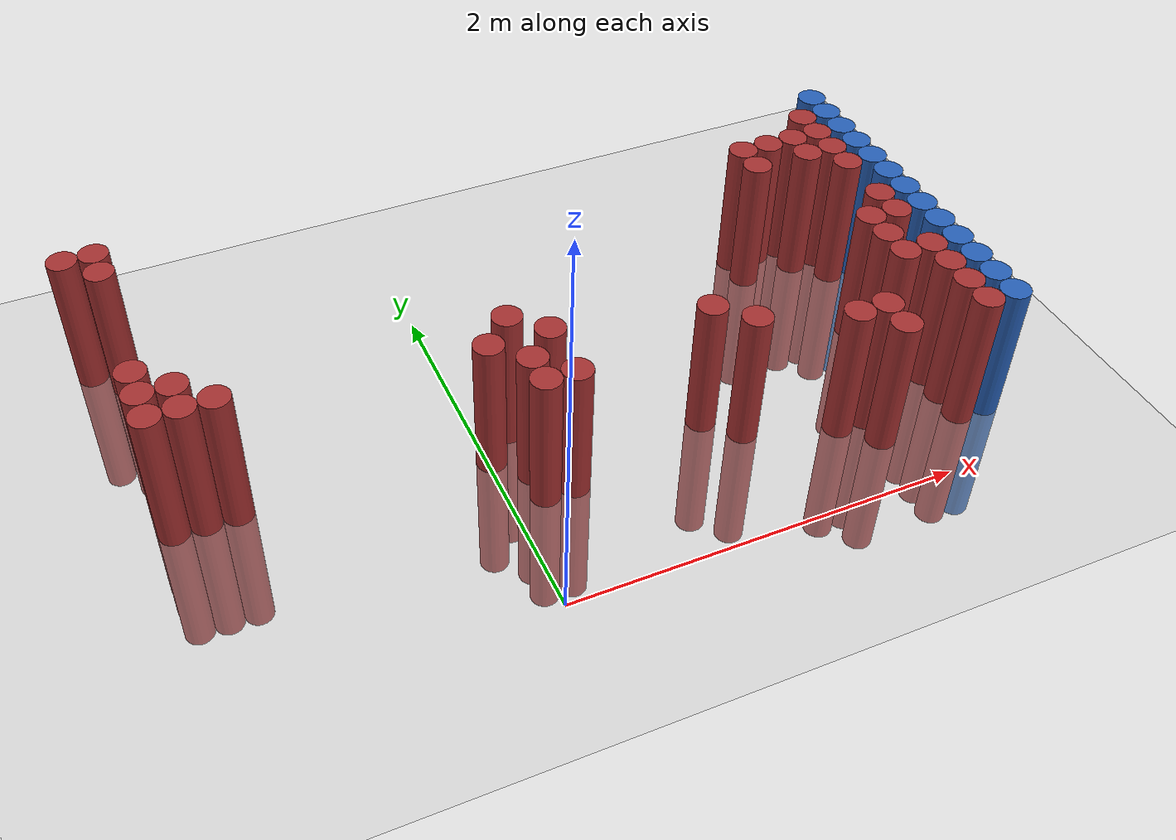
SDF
<sdf version="1.6">
 <world name="default">
  <model name="ground_plane">
   <static>1</static>
   <link name="link">
    <collision name="collision">
     <geometry><plane><normal>0 0 1</normal><size>100 100</size></plane></geometry>
     <surface><friction><ode><mu>100</mu><mu2>50</mu2></ode></friction></surface>
    </collision>
    <visual name="visual">
     <cast_shadows>0</cast_shadows>
     <geometry><plane><normal>0 0 1</normal><size>100 100</size></plane></geometry>
     <material>
      <script><uri>file://media/materials/scripts/gazebo.material</uri><name>Gazebo/Grey</name></script>
     </material>
    </visual>
   </link>
  </model>
  <model name="unit_cylinder_148">
   <static>1</static>
   <pose>-1.625000 2.275000 0.000000 0.000000 0.000000 0.000000</pose>
   <link name="link">
    <inertial>
     <mass>1</mass>
     <inertia><ixx>0.145833</ixx><ixy>0</ixy><ixz>0</ixz><iyy>0.145833</iyy><iyz>0</iyz><izz>0.125</izz></inertia>
    </inertial>
    <collision name="collision">
     <geometry><cylinder><radius>0.075000</radius><length>1.5</length></cylinder></geometry>
    </collision>
    <visual name="visual">
     <geometry><cylinder><radius>0.075000</radius><length>1.5</length></cylinder></geometry>
     <material>
      <ambient>0.648000 0.192000 0.192000 1</ambient>
      <diffuse>0.648000 0.192000 0.192000 1</diffuse>
     </material>
     <material>
      <script><name>Gazebo/Grey</name><uri>file://media/materials/scripts/gazebo.material</uri></script>
     </material>
    </visual>
   </link>
  </model>
  <model name="unit_cylinder_154">
   <static>1</static>
   <pose>-1.475000 1.075000 0.000000 0.000000 0.000000 0.000000</pose>
   <link name="link">
    <inertial>
     <mass>1</mass>
     <inertia><ixx>0.145833</ixx><ixy>0</ixy><ixz>0</ixz><iyy>0.145833</iyy><iyz>0</iyz><izz>0.125</izz></inertia>
    </inertial>
    <collision name="collision">
     <geometry><cylinder><radius>0.075000</radius><length>1.5</length></cylinder></geometry>
    </collision>
    <visual name="visual">
     <geometry><cylinder><radius>0.075000</radius><length>1.5</length></cylinder></geometry>
     <material>
      <ambient>0.648000 0.192000 0.192000 1</ambient>
      <diffuse>0.648000 0.192000 0.192000 1</diffuse>
     </material>
     <material>
      <script><name>Gazebo/Grey</name><uri>file://media/materials/scripts/gazebo.material</uri></script>
     </material>
    </visual>
   </link>
  </model>
  <model name="unit_cylinder_155">
   <static>1</static>
   <pose>-1.475000 1.225000 0.000000 0.000000 0.000000 0.000000</pose>
   <link name="link">
    <inertial>
     <mass>1</mass>
     <inertia><ixx>0.145833</ixx><ixy>0</ixy><ixz>0</ixz><iyy>0.145833</iyy><iyz>0</iyz><izz>0.125</izz></inertia>
    </inertial>
    <collision name="collision">
     <geometry><cylinder><radius>0.075000</radius><length>1.5</length></cylinder></geometry>
    </collision>
    <visual name="visual">
     <geometry><cylinder><radius>0.075000</radius><length>1.5</length></cylinder></geometry>
     <material>
      <ambient>0.648000 0.192000 0.192000 1</ambient>
      <diffuse>0.648000 0.192000 0.192000 1</diffuse>
     </material>
     <material>
      <script><name>Gazebo/Grey</name><uri>file://media/materials/scripts/gazebo.material</uri></script>
     </material>
    </visual>
   </link>
  </model>
  <model name="unit_cylinder_156">
   <static>1</static>
   <pose>-1.475000 1.375000 0.000000 0.000000 0.000000 0.000000</pose>
   <link name="link">
    <inertial>
     <mass>1</mass>
     <inertia><ixx>0.145833</ixx><ixy>0</ixy><ixz>0</ixz><iyy>0.145833</iyy><iyz>0</iyz><izz>0.125</izz></inertia>
    </inertial>
    <collision name="collision">
     <geometry><cylinder><radius>0.075000</radius><length>1.5</length></cylinder></geometry>
    </collision>
    <visual name="visual">
     <geometry><cylinder><radius>0.075000</radius><length>1.5</length></cylinder></geometry>
     <material>
      <ambient>0.648000 0.192000 0.192000 1</ambient>
      <diffuse>0.648000 0.192000 0.192000 1</diffuse>
     </material>
     <material>
      <script><name>Gazebo/Grey</name><uri>file://media/materials/scripts/gazebo.material</uri></script>
     </material>
    </visual>
   </link>
  </model>
  <model name="unit_cylinder_157">
   <static>1</static>
   <pose>-1.475000 2.125000 0.000000 0.000000 0.000000 0.000000</pose>
   <link name="link">
    <inertial>
     <mass>1</mass>
     <inertia><ixx>0.145833</ixx><ixy>0</ixy><ixz>0</ixz><iyy>0.145833</iyy><iyz>0</iyz><izz>0.125</izz></inertia>
    </inertial>
    <collision name="collision">
     <geometry><cylinder><radius>0.075000</radius><length>1.5</length></cylinder></geometry>
    </collision>
    <visual name="visual">
     <geometry><cylinder><radius>0.075000</radius><length>1.5</length></cylinder></geometry>
     <material>
      <ambient>0.648000 0.192000 0.192000 1</ambient>
      <diffuse>0.648000 0.192000 0.192000 1</diffuse>
     </material>
     <material>
      <script><name>Gazebo/Grey</name><uri>file://media/materials/scripts/gazebo.material</uri></script>
     </material>
    </visual>
   </link>
  </model>
  <model name="unit_cylinder_158">
   <static>1</static>
   <pose>-1.475000 2.275000 0.000000 0.000000 0.000000 0.000000</pose>
   <link name="link">
    <inertial>
     <mass>1</mass>
     <inertia><ixx>0.145833</ixx><ixy>0</ixy><ixz>0</ixz><iyy>0.145833</iyy><iyz>0</iyz><izz>0.125</izz></inertia>
    </inertial>
    <collision name="collision">
     <geometry><cylinder><radius>0.075000</radius><length>1.5</length></cylinder></geometry>
    </collision>
    <visual name="visual">
     <geometry><cylinder><radius>0.075000</radius><length>1.5</length></cylinder></geometry>
     <material>
      <ambient>0.648000 0.192000 0.192000 1</ambient>
      <diffuse>0.648000 0.192000 0.192000 1</diffuse>
     </material>
     <material>
      <script><name>Gazebo/Grey</name><uri>file://media/materials/scripts/gazebo.material</uri></script>
     </material>
    </visual>
   </link>
  </model>
  <model name="unit_cylinder_161">
   <static>1</static>
   <pose>-1.325000 1.075000 0.000000 0.000000 0.000000 0.000000</pose>
   <link name="link">
    <inertial>
     <mass>1</mass>
     <inertia><ixx>0.145833</ixx><ixy>0</ixy><ixz>0</ixz><iyy>0.145833</iyy><iyz>0</iyz><izz>0.125</izz></inertia>
    </inertial>
    <collision name="collision">
     <geometry><cylinder><radius>0.075000</radius><length>1.5</length></cylinder></geometry>
    </collision>
    <visual name="visual">
     <geometry><cylinder><radius>0.075000</radius><length>1.5</length></cylinder></geometry>
     <material>
      <ambient>0.648000 0.192000 0.192000 1</ambient>
      <diffuse>0.648000 0.192000 0.192000 1</diffuse>
     </material>
     <material>
      <script><name>Gazebo/Grey</name><uri>file://media/materials/scripts/gazebo.material</uri></script>
     </material>
    </visual>
   </link>
  </model>
  <model name="unit_cylinder_162">
   <static>1</static>
   <pose>-1.325000 1.225000 0.000000 0.000000 0.000000 0.000000</pose>
   <link name="link">
    <inertial>
     <mass>1</mass>
     <inertia><ixx>0.145833</ixx><ixy>0</ixy><ixz>0</ixz><iyy>0.145833</iyy><iyz>0</iyz><izz>0.125</izz></inertia>
    </inertial>
    <collision name="collision">
     <geometry><cylinder><radius>0.075000</radius><length>1.5</length></cylinder></geometry>
    </collision>
    <visual name="visual">
     <geometry><cylinder><radius>0.075000</radius><length>1.5</length></cylinder></geometry>
     <material>
      <ambient>0.648000 0.192000 0.192000 1</ambient>
      <diffuse>0.648000 0.192000 0.192000 1</diffuse>
     </material>
     <material>
      <script><name>Gazebo/Grey</name><uri>file://media/materials/scripts/gazebo.material</uri></script>
     </material>
    </visual>
   </link>
  </model>
  <model name="unit_cylinder_164">
   <static>1</static>
   <pose>-1.175000 1.075000 0.000000 0.000000 0.000000 0.000000</pose>
   <link name="link">
    <inertial>
     <mass>1</mass>
     <inertia><ixx>0.145833</ixx><ixy>0</ixy><ixz>0</ixz><iyy>0.145833</iyy><iyz>0</iyz><izz>0.125</izz></inertia>
    </inertial>
    <collision name="collision">
     <geometry><cylinder><radius>0.075000</radius><length>1.5</length></cylinder></geometry>
    </collision>
    <visual name="visual">
     <geometry><cylinder><radius>0.075000</radius><length>1.5</length></cylinder></geometry>
     <material>
      <ambient>0.648000 0.192000 0.192000 1</ambient>
      <diffuse>0.648000 0.192000 0.192000 1</diffuse>
     </material>
     <material>
      <script><name>Gazebo/Grey</name><uri>file://media/materials/scripts/gazebo.material</uri></script>
     </material>
    </visual>
   </link>
  </model>
  <model name="unit_cylinder_169">
   <static>1</static>
   <pose>0.025000 0.925000 0.000000 0.000000 0.000000 0.000000</pose>
   <link name="link">
    <inertial>
     <mass>1</mass>
     <inertia><ixx>0.145833</ixx><ixy>0</ixy><ixz>0</ixz><iyy>0.145833</iyy><iyz>0</iyz><izz>0.125</izz></inertia>
    </inertial>
    <collision name="collision">
     <geometry><cylinder><radius>0.075000</radius><length>1.5</length></cylinder></geometry>
    </collision>
    <visual name="visual">
     <geometry><cylinder><radius>0.075000</radius><length>1.5</length></cylinder></geometry>
     <material>
      <ambient>0.648000 0.192000 0.192000 1</ambient>
      <diffuse>0.648000 0.192000 0.192000 1</diffuse>
     </material>
     <material>
      <script><name>Gazebo/Grey</name><uri>file://media/materials/scripts/gazebo.material</uri></script>
     </material>
    </visual>
   </link>
  </model>
  <model name="unit_cylinder_172">
   <static>1</static>
   <pose>0.175000 0.625000 0.000000 0.000000 0.000000 0.000000</pose>
   <link name="link">
    <inertial>
     <mass>1</mass>
     <inertia><ixx>0.145833</ixx><ixy>0</ixy><ixz>0</ixz><iyy>0.145833</iyy><iyz>0</iyz><izz>0.125</izz></inertia>
    </inertial>
    <collision name="collision">
     <geometry><cylinder><radius>0.075000</radius><length>1.5</length></cylinder></geometry>
    </collision>
    <visual name="visual">
     <geometry><cylinder><radius>0.075000</radius><length>1.5</length></cylinder></geometry>
     <material>
      <ambient>0.648000 0.192000 0.192000 1</ambient>
      <diffuse>0.648000 0.192000 0.192000 1</diffuse>
     </material>
     <material>
      <script><name>Gazebo/Grey</name><uri>file://media/materials/scripts/gazebo.material</uri></script>
     </material>
    </visual>
   </link>
  </model>
  <model name="unit_cylinder_173">
   <static>1</static>
   <pose>0.175000 0.775000 0.000000 0.000000 0.000000 0.000000</pose>
   <link name="link">
    <inertial>
     <mass>1</mass>
     <inertia><ixx>0.145833</ixx><ixy>0</ixy><ixz>0</ixz><iyy>0.145833</iyy><iyz>0</iyz><izz>0.125</izz></inertia>
    </inertial>
    <collision name="collision">
     <geometry><cylinder><radius>0.075000</radius><length>1.5</length></cylinder></geometry>
    </collision>
    <visual name="visual">
     <geometry><cylinder><radius>0.075000</radius><length>1.5</length></cylinder></geometry>
     <material>
      <ambient>0.648000 0.192000 0.192000 1</ambient>
      <diffuse>0.648000 0.192000 0.192000 1</diffuse>
     </material>
     <material>
      <script><name>Gazebo/Grey</name><uri>file://media/materials/scripts/gazebo.material</uri></script>
     </material>
    </visual>
   </link>
  </model>
  <model name="unit_cylinder_174">
   <static>1</static>
   <pose>0.175000 1.075000 0.000000 0.000000 0.000000 0.000000</pose>
   <link name="link">
    <inertial>
     <mass>1</mass>
     <inertia><ixx>0.145833</ixx><ixy>0</ixy><ixz>0</ixz><iyy>0.145833</iyy><iyz>0</iyz><izz>0.125</izz></inertia>
    </inertial>
    <collision name="collision">
     <geometry><cylinder><radius>0.075000</radius><length>1.5</length></cylinder></geometry>
    </collision>
    <visual name="visual">
     <geometry><cylinder><radius>0.075000</radius><length>1.5</length></cylinder></geometry>
     <material>
      <ambient>0.648000 0.192000 0.192000 1</ambient>
      <diffuse>0.648000 0.192000 0.192000 1</diffuse>
     </material>
     <material>
      <script><name>Gazebo/Grey</name><uri>file://media/materials/scripts/gazebo.material</uri></script>
     </material>
    </visual>
   </link>
  </model>
  <model name="unit_cylinder_176">
   <static>1</static>
   <pose>0.325000 0.625000 0.000000 0.000000 0.000000 0.000000</pose>
   <link name="link">
    <inertial>
     <mass>1</mass>
     <inertia><ixx>0.145833</ixx><ixy>0</ixy><ixz>0</ixz><iyy>0.145833</iyy><iyz>0</iyz><izz>0.125</izz></inertia>
    </inertial>
    <collision name="collision">
     <geometry><cylinder><radius>0.075000</radius><length>1.5</length></cylinder></geometry>
    </collision>
    <visual name="visual">
     <geometry><cylinder><radius>0.075000</radius><length>1.5</length></cylinder></geometry>
     <material>
      <ambient>0.648000 0.192000 0.192000 1</ambient>
      <diffuse>0.648000 0.192000 0.192000 1</diffuse>
     </material>
     <material>
      <script><name>Gazebo/Grey</name><uri>file://media/materials/scripts/gazebo.material</uri></script>
     </material>
    </visual>
   </link>
  </model>
  <model name="unit_cylinder_177">
   <static>1</static>
   <pose>0.325000 0.925000 0.000000 0.000000 0.000000 0.000000</pose>
   <link name="link">
    <inertial>
     <mass>1</mass>
     <inertia><ixx>0.145833</ixx><ixy>0</ixy><ixz>0</ixz><iyy>0.145833</iyy><iyz>0</iyz><izz>0.125</izz></inertia>
    </inertial>
    <collision name="collision">
     <geometry><cylinder><radius>0.075000</radius><length>1.5</length></cylinder></geometry>
    </collision>
    <visual name="visual">
     <geometry><cylinder><radius>0.075000</radius><length>1.5</length></cylinder></geometry>
     <material>
      <ambient>0.648000 0.192000 0.192000 1</ambient>
      <diffuse>0.648000 0.192000 0.192000 1</diffuse>
     </material>
     <material>
      <script><name>Gazebo/Grey</name><uri>file://media/materials/scripts/gazebo.material</uri></script>
     </material>
    </visual>
   </link>
  </model>
  <model name="unit_cylinder_178">
   <static>1</static>
   <pose>1.075000 0.775000 0.000000 0.000000 0.000000 0.000000</pose>
   <link name="link">
    <inertial>
     <mass>1</mass>
     <inertia><ixx>0.145833</ixx><ixy>0</ixy><ixz>0</ixz><iyy>0.145833</iyy><iyz>0</iyz><izz>0.125</izz></inertia>
    </inertial>
    <collision name="collision">
     <geometry><cylinder><radius>0.075000</radius><length>1.5</length></cylinder></geometry>
    </collision>
    <visual name="visual">
     <geometry><cylinder><radius>0.075000</radius><length>1.5</length></cylinder></geometry>
     <material>
      <ambient>0.648000 0.192000 0.192000 1</ambient>
      <diffuse>0.648000 0.192000 0.192000 1</diffuse>
     </material>
     <material>
      <script><name>Gazebo/Grey</name><uri>file://media/materials/scripts/gazebo.material</uri></script>
     </material>
    </visual>
   </link>
  </model>
  <model name="unit_cylinder_181">
   <static>1</static>
   <pose>1.225000 0.625000 0.000000 0.000000 0.000000 0.000000</pose>
   <link name="link">
    <inertial>
     <mass>1</mass>
     <inertia><ixx>0.145833</ixx><ixy>0</ixy><ixz>0</ixz><iyy>0.145833</iyy><iyz>0</iyz><izz>0.125</izz></inertia>
    </inertial>
    <collision name="collision">
     <geometry><cylinder><radius>0.075000</radius><length>1.5</length></cylinder></geometry>
    </collision>
    <visual name="visual">
     <geometry><cylinder><radius>0.075000</radius><length>1.5</length></cylinder></geometry>
     <material>
      <ambient>0.648000 0.192000 0.192000 1</ambient>
      <diffuse>0.648000 0.192000 0.192000 1</diffuse>
     </material>
     <material>
      <script><name>Gazebo/Grey</name><uri>file://media/materials/scripts/gazebo.material</uri></script>
     </material>
    </visual>
   </link>
  </model>
  <model name="unit_cylinder_185">
   <static>1</static>
   <pose>1.675000 0.475000 0.000000 0.000000 0.000000 0.000000</pose>
   <link name="link">
    <inertial>
     <mass>1</mass>
     <inertia><ixx>0.145833</ixx><ixy>0</ixy><ixz>0</ixz><iyy>0.145833</iyy><iyz>0</iyz><izz>0.125</izz></inertia>
    </inertial>
    <collision name="collision">
     <geometry><cylinder><radius>0.075000</radius><length>1.5</length></cylinder></geometry>
    </collision>
    <visual name="visual">
     <geometry><cylinder><radius>0.075000</radius><length>1.5</length></cylinder></geometry>
     <material>
      <ambient>0.648000 0.192000 0.192000 1</ambient>
      <diffuse>0.648000 0.192000 0.192000 1</diffuse>
     </material>
     <material>
      <script><name>Gazebo/Grey</name><uri>file://media/materials/scripts/gazebo.material</uri></script>
     </material>
    </visual>
   </link>
  </model>
  <model name="unit_cylinder_190">
   <static>1</static>
   <pose>1.825000 0.325000 0.000000 0.000000 0.000000 0.000000</pose>
   <link name="link">
    <inertial>
     <mass>1</mass>
     <inertia><ixx>0.145833</ixx><ixy>0</ixy><ixz>0</ixz><iyy>0.145833</iyy><iyz>0</iyz><izz>0.125</izz></inertia>
    </inertial>
    <collision name="collision">
     <geometry><cylinder><radius>0.075000</radius><length>1.5</length></cylinder></geometry>
    </collision>
    <visual name="visual">
     <geometry><cylinder><radius>0.075000</radius><length>1.5</length></cylinder></geometry>
     <material>
      <ambient>0.648000 0.192000 0.192000 1</ambient>
      <diffuse>0.648000 0.192000 0.192000 1</diffuse>
     </material>
     <material>
      <script><name>Gazebo/Grey</name><uri>file://media/materials/scripts/gazebo.material</uri></script>
     </material>
    </visual>
   </link>
  </model>
  <model name="unit_cylinder_191">
   <static>1</static>
   <pose>1.825000 0.475000 0.000000 0.000000 0.000000 0.000000</pose>
   <link name="link">
    <inertial>
     <mass>1</mass>
     <inertia><ixx>0.145833</ixx><ixy>0</ixy><ixz>0</ixz><iyy>0.145833</iyy><iyz>0</iyz><izz>0.125</izz></inertia>
    </inertial>
    <collision name="collision">
     <geometry><cylinder><radius>0.075000</radius><length>1.5</length></cylinder></geometry>
    </collision>
    <visual name="visual">
     <geometry><cylinder><radius>0.075000</radius><length>1.5</length></cylinder></geometry>
     <material>
      <ambient>0.648000 0.192000 0.192000 1</ambient>
      <diffuse>0.648000 0.192000 0.192000 1</diffuse>
     </material>
     <material>
      <script><name>Gazebo/Grey</name><uri>file://media/materials/scripts/gazebo.material</uri></script>
     </material>
    </visual>
   </link>
  </model>
  <model name="unit_cylinder_192">
   <static>1</static>
   <pose>1.825000 1.675000 0.000000 0.000000 0.000000 0.000000</pose>
   <link name="link">
    <inertial>
     <mass>1</mass>
     <inertia><ixx>0.145833</ixx><ixy>0</ixy><ixz>0</ixz><iyy>0.145833</iyy><iyz>0</iyz><izz>0.125</izz></inertia>
    </inertial>
    <collision name="collision">
     <geometry><cylinder><radius>0.075000</radius><length>1.5</length></cylinder></geometry>
    </collision>
    <visual name="visual">
     <geometry><cylinder><radius>0.075000</radius><length>1.5</length></cylinder></geometry>
     <material>
      <ambient>0.648000 0.192000 0.192000 1</ambient>
      <diffuse>0.648000 0.192000 0.192000 1</diffuse>
     </material>
     <material>
      <script><name>Gazebo/Grey</name><uri>file://media/materials/scripts/gazebo.material</uri></script>
     </material>
    </visual>
   </link>
  </model>
  <model name="unit_cylinder_193">
   <static>1</static>
   <pose>1.825000 1.825000 0.000000 0.000000 0.000000 0.000000</pose>
   <link name="link">
    <inertial>
     <mass>1</mass>
     <inertia><ixx>0.145833</ixx><ixy>0</ixy><ixz>0</ixz><iyy>0.145833</iyy><iyz>0</iyz><izz>0.125</izz></inertia>
    </inertial>
    <collision name="collision">
     <geometry><cylinder><radius>0.075000</radius><length>1.5</length></cylinder></geometry>
    </collision>
    <visual name="visual">
     <geometry><cylinder><radius>0.075000</radius><length>1.5</length></cylinder></geometry>
     <material>
      <ambient>0.648000 0.192000 0.192000 1</ambient>
      <diffuse>0.648000 0.192000 0.192000 1</diffuse>
     </material>
     <material>
      <script><name>Gazebo/Grey</name><uri>file://media/materials/scripts/gazebo.material</uri></script>
     </material>
    </visual>
   </link>
  </model>
  <model name="unit_cylinder_197">
   <static>1</static>
   <pose>1.975000 1.825000 0.000000 0.000000 0.000000 0.000000</pose>
   <link name="link">
    <inertial>
     <mass>1</mass>
     <inertia><ixx>0.145833</ixx><ixy>0</ixy><ixz>0</ixz><iyy>0.145833</iyy><iyz>0</iyz><izz>0.125</izz></inertia>
    </inertial>
    <collision name="collision">
     <geometry><cylinder><radius>0.075000</radius><length>1.5</length></cylinder></geometry>
    </collision>
    <visual name="visual">
     <geometry><cylinder><radius>0.075000</radius><length>1.5</length></cylinder></geometry>
     <material>
      <ambient>0.648000 0.192000 0.192000 1</ambient>
      <diffuse>0.648000 0.192000 0.192000 1</diffuse>
     </material>
     <material>
      <script><name>Gazebo/Grey</name><uri>file://media/materials/scripts/gazebo.material</uri></script>
     </material>
    </visual>
   </link>
  </model>
  <model name="unit_cylinder_200">
   <static>1</static>
   <pose>2.125000 0.775000 0.000000 0.000000 0.000000 0.000000</pose>
   <link name="link">
    <inertial>
     <mass>1</mass>
     <inertia><ixx>0.145833</ixx><ixy>0</ixy><ixz>0</ixz><iyy>0.145833</iyy><iyz>0</iyz><izz>0.125</izz></inertia>
    </inertial>
    <collision name="collision">
     <geometry><cylinder><radius>0.075000</radius><length>1.5</length></cylinder></geometry>
    </collision>
    <visual name="visual">
     <geometry><cylinder><radius>0.075000</radius><length>1.5</length></cylinder></geometry>
     <material>
      <ambient>0.648000 0.192000 0.192000 1</ambient>
      <diffuse>0.648000 0.192000 0.192000 1</diffuse>
     </material>
     <material>
      <script><name>Gazebo/Grey</name><uri>file://media/materials/scripts/gazebo.material</uri></script>
     </material>
    </visual>
   </link>
  </model>
  <model name="unit_cylinder_201">
   <static>1</static>
   <pose>2.125000 0.925000 0.000000 0.000000 0.000000 0.000000</pose>
   <link name="link">
    <inertial>
     <mass>1</mass>
     <inertia><ixx>0.145833</ixx><ixy>0</ixy><ixz>0</ixz><iyy>0.145833</iyy><iyz>0</iyz><izz>0.125</izz></inertia>
    </inertial>
    <collision name="collision">
     <geometry><cylinder><radius>0.075000</radius><length>1.5</length></cylinder></geometry>
    </collision>
    <visual name="visual">
     <geometry><cylinder><radius>0.075000</radius><length>1.5</length></cylinder></geometry>
     <material>
      <ambient>0.648000 0.192000 0.192000 1</ambient>
      <diffuse>0.648000 0.192000 0.192000 1</diffuse>
     </material>
     <material>
      <script><name>Gazebo/Grey</name><uri>file://media/materials/scripts/gazebo.material</uri></script>
     </material>
    </visual>
   </link>
  </model>
  <model name="unit_cylinder_202">
   <static>1</static>
   <pose>2.125000 1.075000 0.000000 0.000000 0.000000 0.000000</pose>
   <link name="link">
    <inertial>
     <mass>1</mass>
     <inertia><ixx>0.145833</ixx><ixy>0</ixy><ixz>0</ixz><iyy>0.145833</iyy><iyz>0</iyz><izz>0.125</izz></inertia>
    </inertial>
    <collision name="collision">
     <geometry><cylinder><radius>0.075000</radius><length>1.5</length></cylinder></geometry>
    </collision>
    <visual name="visual">
     <geometry><cylinder><radius>0.075000</radius><length>1.5</length></cylinder></geometry>
     <material>
      <ambient>0.648000 0.192000 0.192000 1</ambient>
      <diffuse>0.648000 0.192000 0.192000 1</diffuse>
     </material>
     <material>
      <script><name>Gazebo/Grey</name><uri>file://media/materials/scripts/gazebo.material</uri></script>
     </material>
    </visual>
   </link>
  </model>
  <model name="unit_cylinder_203">
   <static>1</static>
   <pose>2.125000 1.675000 0.000000 0.000000 0.000000 0.000000</pose>
   <link name="link">
    <inertial>
     <mass>1</mass>
     <inertia><ixx>0.145833</ixx><ixy>0</ixy><ixz>0</ixz><iyy>0.145833</iyy><iyz>0</iyz><izz>0.125</izz></inertia>
    </inertial>
    <collision name="collision">
     <geometry><cylinder><radius>0.075000</radius><length>1.5</length></cylinder></geometry>
    </collision>
    <visual name="visual">
     <geometry><cylinder><radius>0.075000</radius><length>1.5</length></cylinder></geometry>
     <material>
      <ambient>0.648000 0.192000 0.192000 1</ambient>
      <diffuse>0.648000 0.192000 0.192000 1</diffuse>
     </material>
     <material>
      <script><name>Gazebo/Grey</name><uri>file://media/materials/scripts/gazebo.material</uri></script>
     </material>
    </visual>
   </link>
  </model>
  <model name="unit_cylinder_204">
   <static>1</static>
   <pose>2.125000 1.825000 0.000000 0.000000 0.000000 0.000000</pose>
   <link name="link">
    <inertial>
     <mass>1</mass>
     <inertia><ixx>0.145833</ixx><ixy>0</ixy><ixz>0</ixz><iyy>0.145833</iyy><iyz>0</iyz><izz>0.125</izz></inertia>
    </inertial>
    <collision name="collision">
     <geometry><cylinder><radius>0.075000</radius><length>1.5</length></cylinder></geometry>
    </collision>
    <visual name="visual">
     <geometry><cylinder><radius>0.075000</radius><length>1.5</length></cylinder></geometry>
     <material>
      <ambient>0.648000 0.192000 0.192000 1</ambient>
      <diffuse>0.648000 0.192000 0.192000 1</diffuse>
     </material>
     <material>
      <script><name>Gazebo/Grey</name><uri>file://media/materials/scripts/gazebo.material</uri></script>
     </material>
    </visual>
   </link>
  </model>
  <model name="unit_cylinder_206">
   <static>1</static>
   <pose>2.275000 0.325000 0.000000 0.000000 0.000000 0.000000</pose>
   <link name="link">
    <inertial>
     <mass>1</mass>
     <inertia><ixx>0.145833</ixx><ixy>0</ixy><ixz>0</ixz><iyy>0.145833</iyy><iyz>0</iyz><izz>0.125</izz></inertia>
    </inertial>
    <collision name="collision">
     <geometry><cylinder><radius>0.075000</radius><length>1.5</length></cylinder></geometry>
    </collision>
    <visual name="visual">
     <geometry><cylinder><radius>0.075000</radius><length>1.5</length></cylinder></geometry>
     <material>
      <ambient>0.648000 0.192000 0.192000 1</ambient>
      <diffuse>0.648000 0.192000 0.192000 1</diffuse>
     </material>
     <material>
      <script><name>Gazebo/Grey</name><uri>file://media/materials/scripts/gazebo.material</uri></script>
     </material>
    </visual>
   </link>
  </model>
  <model name="unit_cylinder_207">
   <static>1</static>
   <pose>2.275000 0.475000 0.000000 0.000000 0.000000 0.000000</pose>
   <link name="link">
    <inertial>
     <mass>1</mass>
     <inertia><ixx>0.145833</ixx><ixy>0</ixy><ixz>0</ixz><iyy>0.145833</iyy><iyz>0</iyz><izz>0.125</izz></inertia>
    </inertial>
    <collision name="collision">
     <geometry><cylinder><radius>0.075000</radius><length>1.5</length></cylinder></geometry>
    </collision>
    <visual name="visual">
     <geometry><cylinder><radius>0.075000</radius><length>1.5</length></cylinder></geometry>
     <material>
      <ambient>0.648000 0.192000 0.192000 1</ambient>
      <diffuse>0.648000 0.192000 0.192000 1</diffuse>
     </material>
     <material>
      <script><name>Gazebo/Grey</name><uri>file://media/materials/scripts/gazebo.material</uri></script>
     </material>
    </visual>
   </link>
  </model>
  <model name="unit_cylinder_208">
   <static>1</static>
   <pose>2.275000 0.625000 0.000000 0.000000 0.000000 0.000000</pose>
   <link name="link">
    <inertial>
     <mass>1</mass>
     <inertia><ixx>0.145833</ixx><ixy>0</ixy><ixz>0</ixz><iyy>0.145833</iyy><iyz>0</iyz><izz>0.125</izz></inertia>
    </inertial>
    <collision name="collision">
     <geometry><cylinder><radius>0.075000</radius><length>1.5</length></cylinder></geometry>
    </collision>
    <visual name="visual">
     <geometry><cylinder><radius>0.075000</radius><length>1.5</length></cylinder></geometry>
     <material>
      <ambient>0.648000 0.192000 0.192000 1</ambient>
      <diffuse>0.648000 0.192000 0.192000 1</diffuse>
     </material>
     <material>
      <script><name>Gazebo/Grey</name><uri>file://media/materials/scripts/gazebo.material</uri></script>
     </material>
    </visual>
   </link>
  </model>
  <model name="unit_cylinder_209">
   <static>1</static>
   <pose>2.275000 0.775000 0.000000 0.000000 0.000000 0.000000</pose>
   <link name="link">
    <inertial>
     <mass>1</mass>
     <inertia><ixx>0.145833</ixx><ixy>0</ixy><ixz>0</ixz><iyy>0.145833</iyy><iyz>0</iyz><izz>0.125</izz></inertia>
    </inertial>
    <collision name="collision">
     <geometry><cylinder><radius>0.075000</radius><length>1.5</length></cylinder></geometry>
    </collision>
    <visual name="visual">
     <geometry><cylinder><radius>0.075000</radius><length>1.5</length></cylinder></geometry>
     <material>
      <ambient>0.648000 0.192000 0.192000 1</ambient>
      <diffuse>0.648000 0.192000 0.192000 1</diffuse>
     </material>
     <material>
      <script><name>Gazebo/Grey</name><uri>file://media/materials/scripts/gazebo.material</uri></script>
     </material>
    </visual>
   </link>
  </model>
  <model name="unit_cylinder_210">
   <static>1</static>
   <pose>2.275000 1.075000 0.000000 0.000000 0.000000 0.000000</pose>
   <link name="link">
    <inertial>
     <mass>1</mass>
     <inertia><ixx>0.145833</ixx><ixy>0</ixy><ixz>0</ixz><iyy>0.145833</iyy><iyz>0</iyz><izz>0.125</izz></inertia>
    </inertial>
    <collision name="collision">
     <geometry><cylinder><radius>0.075000</radius><length>1.5</length></cylinder></geometry>
    </collision>
    <visual name="visual">
     <geometry><cylinder><radius>0.075000</radius><length>1.5</length></cylinder></geometry>
     <material>
      <ambient>0.648000 0.192000 0.192000 1</ambient>
      <diffuse>0.648000 0.192000 0.192000 1</diffuse>
     </material>
     <material>
      <script><name>Gazebo/Grey</name><uri>file://media/materials/scripts/gazebo.material</uri></script>
     </material>
    </visual>
   </link>
  </model>
  <model name="unit_cylinder_211">
   <static>1</static>
   <pose>2.275000 1.225000 0.000000 0.000000 0.000000 0.000000</pose>
   <link name="link">
    <inertial>
     <mass>1</mass>
     <inertia><ixx>0.145833</ixx><ixy>0</ixy><ixz>0</ixz><iyy>0.145833</iyy><iyz>0</iyz><izz>0.125</izz></inertia>
    </inertial>
    <collision name="collision">
     <geometry><cylinder><radius>0.075000</radius><length>1.5</length></cylinder></geometry>
    </collision>
    <visual name="visual">
     <geometry><cylinder><radius>0.075000</radius><length>1.5</length></cylinder></geometry>
     <material>
      <ambient>0.648000 0.192000 0.192000 1</ambient>
      <diffuse>0.648000 0.192000 0.192000 1</diffuse>
     </material>
     <material>
      <script><name>Gazebo/Grey</name><uri>file://media/materials/scripts/gazebo.material</uri></script>
     </material>
    </visual>
   </link>
  </model>
  <model name="unit_cylinder_212">
   <static>1</static>
   <pose>2.275000 1.525000 0.000000 0.000000 0.000000 0.000000</pose>
   <link name="link">
    <inertial>
     <mass>1</mass>
     <inertia><ixx>0.145833</ixx><ixy>0</ixy><ixz>0</ixz><iyy>0.145833</iyy><iyz>0</iyz><izz>0.125</izz></inertia>
    </inertial>
    <collision name="collision">
     <geometry><cylinder><radius>0.075000</radius><length>1.5</length></cylinder></geometry>
    </collision>
    <visual name="visual">
     <geometry><cylinder><radius>0.075000</radius><length>1.5</length></cylinder></geometry>
     <material>
      <ambient>0.648000 0.192000 0.192000 1</ambient>
      <diffuse>0.648000 0.192000 0.192000 1</diffuse>
     </material>
     <material>
      <script><name>Gazebo/Grey</name><uri>file://media/materials/scripts/gazebo.material</uri></script>
     </material>
    </visual>
   </link>
  </model>
  <model name="unit_cylinder_213">
   <static>1</static>
   <pose>2.275000 1.675000 0.000000 0.000000 0.000000 0.000000</pose>
   <link name="link">
    <inertial>
     <mass>1</mass>
     <inertia><ixx>0.145833</ixx><ixy>0</ixy><ixz>0</ixz><iyy>0.145833</iyy><iyz>0</iyz><izz>0.125</izz></inertia>
    </inertial>
    <collision name="collision">
     <geometry><cylinder><radius>0.075000</radius><length>1.5</length></cylinder></geometry>
    </collision>
    <visual name="visual">
     <geometry><cylinder><radius>0.075000</radius><length>1.5</length></cylinder></geometry>
     <material>
      <ambient>0.648000 0.192000 0.192000 1</ambient>
      <diffuse>0.648000 0.192000 0.192000 1</diffuse>
     </material>
     <material>
      <script><name>Gazebo/Grey</name><uri>file://media/materials/scripts/gazebo.material</uri></script>
     </material>
    </visual>
   </link>
  </model>
  <model name="unit_cylinder_214">
   <static>1</static>
   <pose>2.275000 1.825000 0.000000 0.000000 0.000000 0.000000</pose>
   <link name="link">
    <inertial>
     <mass>1</mass>
     <inertia><ixx>0.145833</ixx><ixy>0</ixy><ixz>0</ixz><iyy>0.145833</iyy><iyz>0</iyz><izz>0.125</izz></inertia>
    </inertial>
    <collision name="collision">
     <geometry><cylinder><radius>0.075000</radius><length>1.5</length></cylinder></geometry>
    </collision>
    <visual name="visual">
     <geometry><cylinder><radius>0.075000</radius><length>1.5</length></cylinder></geometry>
     <material>
      <ambient>0.648000 0.192000 0.192000 1</ambient>
      <diffuse>0.648000 0.192000 0.192000 1</diffuse>
     </material>
     <material>
      <script><name>Gazebo/Grey</name><uri>file://media/materials/scripts/gazebo.material</uri></script>
     </material>
    </visual>
   </link>
  </model>
  <model name="unit_cylinder_215">
   <static>1</static>
   <pose>2.275000 1.975000 0.000000 0.000000 0.000000 0.000000</pose>
   <link name="link">
    <inertial>
     <mass>1</mass>
     <inertia><ixx>0.145833</ixx><ixy>0</ixy><ixz>0</ixz><iyy>0.145833</iyy><iyz>0</iyz><izz>0.125</izz></inertia>
    </inertial>
    <collision name="collision">
     <geometry><cylinder><radius>0.075000</radius><length>1.5</length></cylinder></geometry>
    </collision>
    <visual name="visual">
     <geometry><cylinder><radius>0.075000</radius><length>1.5</length></cylinder></geometry>
     <material>
      <ambient>0.648000 0.192000 0.192000 1</ambient>
      <diffuse>0.648000 0.192000 0.192000 1</diffuse>
     </material>
     <material>
      <script><name>Gazebo/Grey</name><uri>file://media/materials/scripts/gazebo.material</uri></script>
     </material>
    </visual>
   </link>
  </model>
  <model name="unit_cylinder_222">
   <static>1</static>
   <pose>2.425000 0.325000 0.000000 0.000000 0.000000 0.000000</pose>
   <link name="link">
    <inertial>
     <mass>1</mass>
     <inertia><ixx>0.145833</ixx><ixy>0</ixy><ixz>0</ixz><iyy>0.145833</iyy><iyz>0</iyz><izz>0.125</izz></inertia>
    </inertial>
    <collision name="collision">
     <geometry><cylinder><radius>0.075000</radius><length>1.5</length></cylinder></geometry>
    </collision>
    <visual name="visual">
     <geometry><cylinder><radius>0.075000</radius><length>1.5</length></cylinder></geometry>
     <material>
      <ambient>0.152000 0.379000 0.720000 1</ambient>
      <diffuse>0.152000 0.379000 0.720000 1</diffuse>
     </material>
     <material>
      <script><name>Gazebo/Grey</name><uri>file://media/materials/scripts/gazebo.material</uri></script>
     </material>
    </visual>
   </link>
  </model>
  <model name="unit_cylinder_223">
   <static>1</static>
   <pose>2.425000 0.475000 0.000000 0.000000 0.000000 0.000000</pose>
   <link name="link">
    <inertial>
     <mass>1</mass>
     <inertia><ixx>0.145833</ixx><ixy>0</ixy><ixz>0</ixz><iyy>0.145833</iyy><iyz>0</iyz><izz>0.125</izz></inertia>
    </inertial>
    <collision name="collision">
     <geometry><cylinder><radius>0.075000</radius><length>1.5</length></cylinder></geometry>
    </collision>
    <visual name="visual">
     <geometry><cylinder><radius>0.075000</radius><length>1.5</length></cylinder></geometry>
     <material>
      <ambient>0.152000 0.379000 0.720000 1</ambient>
      <diffuse>0.152000 0.379000 0.720000 1</diffuse>
     </material>
     <material>
      <script><name>Gazebo/Grey</name><uri>file://media/materials/scripts/gazebo.material</uri></script>
     </material>
    </visual>
   </link>
  </model>
  <model name="unit_cylinder_224">
   <static>1</static>
   <pose>2.425000 0.625000 0.000000 0.000000 0.000000 0.000000</pose>
   <link name="link">
    <inertial>
     <mass>1</mass>
     <inertia><ixx>0.145833</ixx><ixy>0</ixy><ixz>0</ixz><iyy>0.145833</iyy><iyz>0</iyz><izz>0.125</izz></inertia>
    </inertial>
    <collision name="collision">
     <geometry><cylinder><radius>0.075000</radius><length>1.5</length></cylinder></geometry>
    </collision>
    <visual name="visual">
     <geometry><cylinder><radius>0.075000</radius><length>1.5</length></cylinder></geometry>
     <material>
      <ambient>0.152000 0.379000 0.720000 1</ambient>
      <diffuse>0.152000 0.379000 0.720000 1</diffuse>
     </material>
     <material>
      <script><name>Gazebo/Grey</name><uri>file://media/materials/scripts/gazebo.material</uri></script>
     </material>
    </visual>
   </link>
  </model>
  <model name="unit_cylinder_225">
   <static>1</static>
   <pose>2.425000 0.775000 0.000000 0.000000 0.000000 0.000000</pose>
   <link name="link">
    <inertial>
     <mass>1</mass>
     <inertia><ixx>0.145833</ixx><ixy>0</ixy><ixz>0</ixz><iyy>0.145833</iyy><iyz>0</iyz><izz>0.125</izz></inertia>
    </inertial>
    <collision name="collision">
     <geometry><cylinder><radius>0.075000</radius><length>1.5</length></cylinder></geometry>
    </collision>
    <visual name="visual">
     <geometry><cylinder><radius>0.075000</radius><length>1.5</length></cylinder></geometry>
     <material>
      <ambient>0.152000 0.379000 0.720000 1</ambient>
      <diffuse>0.152000 0.379000 0.720000 1</diffuse>
     </material>
     <material>
      <script><name>Gazebo/Grey</name><uri>file://media/materials/scripts/gazebo.material</uri></script>
     </material>
    </visual>
   </link>
  </model>
  <model name="unit_cylinder_226">
   <static>1</static>
   <pose>2.425000 0.925000 0.000000 0.000000 0.000000 0.000000</pose>
   <link name="link">
    <inertial>
     <mass>1</mass>
     <inertia><ixx>0.145833</ixx><ixy>0</ixy><ixz>0</ixz><iyy>0.145833</iyy><iyz>0</iyz><izz>0.125</izz></inertia>
    </inertial>
    <collision name="collision">
     <geometry><cylinder><radius>0.075000</radius><length>1.5</length></cylinder></geometry>
    </collision>
    <visual name="visual">
     <geometry><cylinder><radius>0.075000</radius><length>1.5</length></cylinder></geometry>
     <material>
      <ambient>0.152000 0.379000 0.720000 1</ambient>
      <diffuse>0.152000 0.379000 0.720000 1</diffuse>
     </material>
     <material>
      <script><name>Gazebo/Grey</name><uri>file://media/materials/scripts/gazebo.material</uri></script>
     </material>
    </visual>
   </link>
  </model>
  <model name="unit_cylinder_227">
   <static>1</static>
   <pose>2.425000 1.075000 0.000000 0.000000 0.000000 0.000000</pose>
   <link name="link">
    <inertial>
     <mass>1</mass>
     <inertia><ixx>0.145833</ixx><ixy>0</ixy><ixz>0</ixz><iyy>0.145833</iyy><iyz>0</iyz><izz>0.125</izz></inertia>
    </inertial>
    <collision name="collision">
     <geometry><cylinder><radius>0.075000</radius><length>1.5</length></cylinder></geometry>
    </collision>
    <visual name="visual">
     <geometry><cylinder><radius>0.075000</radius><length>1.5</length></cylinder></geometry>
     <material>
      <ambient>0.152000 0.379000 0.720000 1</ambient>
      <diffuse>0.152000 0.379000 0.720000 1</diffuse>
     </material>
     <material>
      <script><name>Gazebo/Grey</name><uri>file://media/materials/scripts/gazebo.material</uri></script>
     </material>
    </visual>
   </link>
  </model>
  <model name="unit_cylinder_228">
   <static>1</static>
   <pose>2.425000 1.225000 0.000000 0.000000 0.000000 0.000000</pose>
   <link name="link">
    <inertial>
     <mass>1</mass>
     <inertia><ixx>0.145833</ixx><ixy>0</ixy><ixz>0</ixz><iyy>0.145833</iyy><iyz>0</iyz><izz>0.125</izz></inertia>
    </inertial>
    <collision name="collision">
     <geometry><cylinder><radius>0.075000</radius><length>1.5</length></cylinder></geometry>
    </collision>
    <visual name="visual">
     <geometry><cylinder><radius>0.075000</radius><length>1.5</length></cylinder></geometry>
     <material>
      <ambient>0.152000 0.379000 0.720000 1</ambient>
      <diffuse>0.152000 0.379000 0.720000 1</diffuse>
     </material>
     <material>
      <script><name>Gazebo/Grey</name><uri>file://media/materials/scripts/gazebo.material</uri></script>
     </material>
    </visual>
   </link>
  </model>
  <model name="unit_cylinder_229">
   <static>1</static>
   <pose>2.425000 1.375000 0.000000 0.000000 0.000000 0.000000</pose>
   <link name="link">
    <inertial>
     <mass>1</mass>
     <inertia><ixx>0.145833</ixx><ixy>0</ixy><ixz>0</ixz><iyy>0.145833</iyy><iyz>0</iyz><izz>0.125</izz></inertia>
    </inertial>
    <collision name="collision">
     <geometry><cylinder><radius>0.075000</radius><length>1.5</length></cylinder></geometry>
    </collision>
    <visual name="visual">
     <geometry><cylinder><radius>0.075000</radius><length>1.5</length></cylinder></geometry>
     <material>
      <ambient>0.152000 0.379000 0.720000 1</ambient>
      <diffuse>0.152000 0.379000 0.720000 1</diffuse>
     </material>
     <material>
      <script><name>Gazebo/Grey</name><uri>file://media/materials/scripts/gazebo.material</uri></script>
     </material>
    </visual>
   </link>
  </model>
  <model name="unit_cylinder_230">
   <static>1</static>
   <pose>2.425000 1.525000 0.000000 0.000000 0.000000 0.000000</pose>
   <link name="link">
    <inertial>
     <mass>1</mass>
     <inertia><ixx>0.145833</ixx><ixy>0</ixy><ixz>0</ixz><iyy>0.145833</iyy><iyz>0</iyz><izz>0.125</izz></inertia>
    </inertial>
    <collision name="collision">
     <geometry><cylinder><radius>0.075000</radius><length>1.5</length></cylinder></geometry>
    </collision>
    <visual name="visual">
     <geometry><cylinder><radius>0.075000</radius><length>1.5</length></cylinder></geometry>
     <material>
      <ambient>0.152000 0.379000 0.720000 1</ambient>
      <diffuse>0.152000 0.379000 0.720000 1</diffuse>
     </material>
     <material>
      <script><name>Gazebo/Grey</name><uri>file://media/materials/scripts/gazebo.material</uri></script>
     </material>
    </visual>
   </link>
  </model>
  <model name="unit_cylinder_231">
   <static>1</static>
   <pose>2.425000 1.675000 0.000000 0.000000 0.000000 0.000000</pose>
   <link name="link">
    <inertial>
     <mass>1</mass>
     <inertia><ixx>0.145833</ixx><ixy>0</ixy><ixz>0</ixz><iyy>0.145833</iyy><iyz>0</iyz><izz>0.125</izz></inertia>
    </inertial>
    <collision name="collision">
     <geometry><cylinder><radius>0.075000</radius><length>1.5</length></cylinder></geometry>
    </collision>
    <visual name="visual">
     <geometry><cylinder><radius>0.075000</radius><length>1.5</length></cylinder></geometry>
     <material>
      <ambient>0.152000 0.379000 0.720000 1</ambient>
      <diffuse>0.152000 0.379000 0.720000 1</diffuse>
     </material>
     <material>
      <script><name>Gazebo/Grey</name><uri>file://media/materials/scripts/gazebo.material</uri></script>
     </material>
    </visual>
   </link>
  </model>
  <model name="unit_cylinder_232">
   <static>1</static>
   <pose>2.425000 1.825000 0.000000 0.000000 0.000000 0.000000</pose>
   <link name="link">
    <inertial>
     <mass>1</mass>
     <inertia><ixx>0.145833</ixx><ixy>0</ixy><ixz>0</ixz><iyy>0.145833</iyy><iyz>0</iyz><izz>0.125</izz></inertia>
    </inertial>
    <collision name="collision">
     <geometry><cylinder><radius>0.075000</radius><length>1.5</length></cylinder></geometry>
    </collision>
    <visual name="visual">
     <geometry><cylinder><radius>0.075000</radius><length>1.5</length></cylinder></geometry>
     <material>
      <ambient>0.152000 0.379000 0.720000 1</ambient>
      <diffuse>0.152000 0.379000 0.720000 1</diffuse>
     </material>
     <material>
      <script><name>Gazebo/Grey</name><uri>file://media/materials/scripts/gazebo.material</uri></script>
     </material>
    </visual>
   </link>
  </model>
  <model name="unit_cylinder_233">
   <static>1</static>
   <pose>2.425000 1.975000 0.000000 0.000000 0.000000 0.000000</pose>
   <link name="link">
    <inertial>
     <mass>1</mass>
     <inertia><ixx>0.145833</ixx><ixy>0</ixy><ixz>0</ixz><iyy>0.145833</iyy><iyz>0</iyz><izz>0.125</izz></inertia>
    </inertial>
    <collision name="collision">
     <geometry><cylinder><radius>0.075000</radius><length>1.5</length></cylinder></geometry>
    </collision>
    <visual name="visual">
     <geometry><cylinder><radius>0.075000</radius><length>1.5</length></cylinder></geometry>
     <material>
      <ambient>0.152000 0.379000 0.720000 1</ambient>
      <diffuse>0.152000 0.379000 0.720000 1</diffuse>
     </material>
     <material>
      <script><name>Gazebo/Grey</name><uri>file://media/materials/scripts/gazebo.material</uri></script>
     </material>
    </visual>
   </link>
  </model>
  <model name="unit_cylinder_234">
   <static>1</static>
   <pose>2.425000 2.125000 0.000000 0.000000 0.000000 0.000000</pose>
   <link name="link">
    <inertial>
     <mass>1</mass>
     <inertia><ixx>0.145833</ixx><ixy>0</ixy><ixz>0</ixz><iyy>0.145833</iyy><iyz>0</iyz><izz>0.125</izz></inertia>
    </inertial>
    <collision name="collision">
     <geometry><cylinder><radius>0.075000</radius><length>1.5</length></cylinder></geometry>
    </collision>
    <visual name="visual">
     <geometry><cylinder><radius>0.075000</radius><length>1.5</length></cylinder></geometry>
     <material>
      <ambient>0.152000 0.379000 0.720000 1</ambient>
      <diffuse>0.152000 0.379000 0.720000 1</diffuse>
     </material>
     <material>
      <script><name>Gazebo/Grey</name><uri>file://media/materials/scripts/gazebo.material</uri></script>
     </material>
    </visual>
   </link>
  </model>
 </world>
</sdf>
